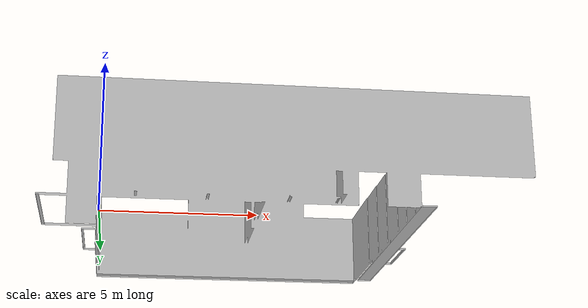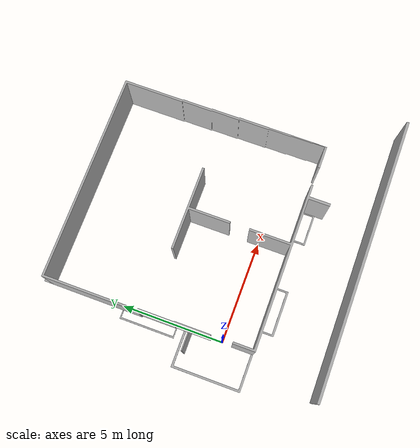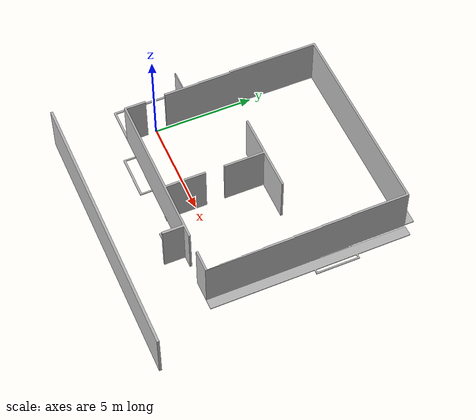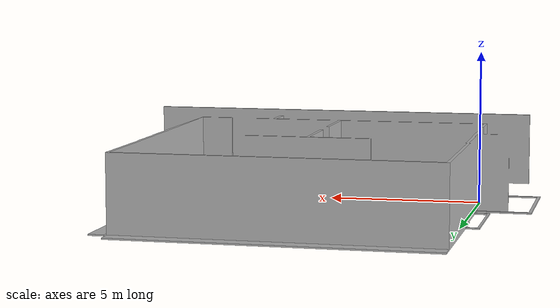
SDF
<?xml version="1.0"?>
<sdf version="1.6">
  <model name="rgo2018/walls">
    <link name="1_link">
      <collision name="1_col">
        <geometry>
          <mesh>
            <uri>model://rgo2018/walls/rgo2018largecleaned.stl</uri>
          </mesh>
        </geometry>
      </collision>
      <visual name="1_vis">
        <geometry>
          <mesh>
            <uri>model://rgo2018/walls/rgo2018largecleaned.stl</uri>
          </mesh>
        </geometry>
      </visual>
      <pose>0 0 0 0 0 0</pose>
    </link>
    <static>true</static>
  </model>
</sdf>
